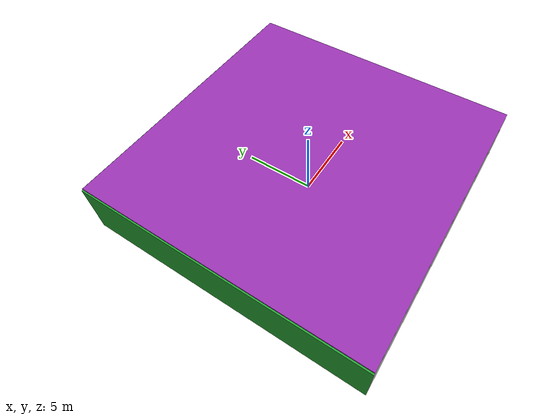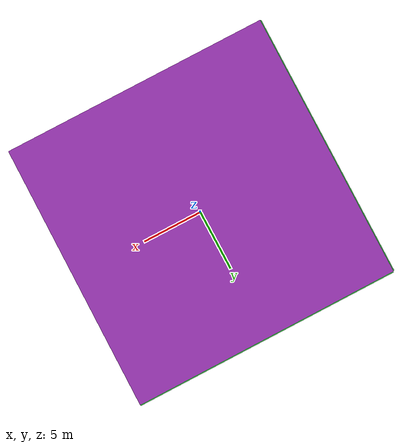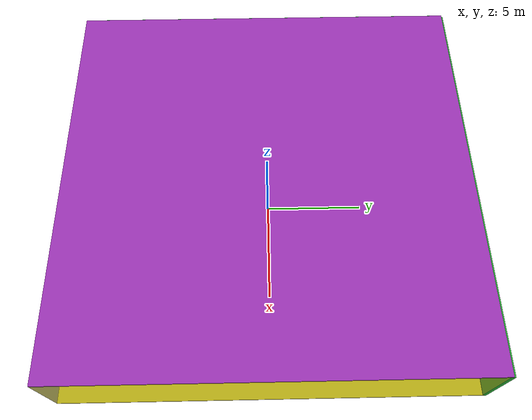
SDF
<sdf version="1.4">
 <world name="default">
  <physics type="ode">
   <max_step_size>0.001</max_step_size>
   <real_time_factor>1</real_time_factor>
   <real_time_update_rate>1000</real_time_update_rate>
   <gravity>0 0 -9.8</gravity>
  </physics>
  <scene><ambient>0.4 0.4 0.4 1</ambient><background>0.7 0.7 0.7 1</background><shadows>1</shadows></scene>
  <model name="Surrounding">
   <static>1</static>
   <link name="Ceiling">
    <collision name="Ceiling_Collision"><geometry><box><size>20 20 0.1</size></box></geometry></collision>
    <visual name="Ceiling_Visual">
     <geometry><box><size>20 20 0.1</size></box></geometry>
     <material>
      <script><uri>file://media/materials/scripts/gazebo.material</uri><name>Gazebo/Purple</name></script>
     </material>
    </visual>
    <pose>0 0 4.05 0 0 0</pose>
   </link>
   <link name="Wall_South">
    <collision name="Wall_South_Collision">
     <geometry><box><size>20 0 4</size></box></geometry>
     <pose>0 0 2 0 -0 0</pose>
    </collision>
    <visual name="Wall_South_Visual">
     <pose>0 0 2 0 -0 0</pose>
     <geometry><box><size>20 0 4</size></box></geometry>
     <material>
      <script><uri>file://media/materials/scripts/gazebo.material</uri><name>Gazebo/PioneerBody</name></script>
     </material>
    </visual>
    <velocity_decay><linear>0</linear><angular>0</angular></velocity_decay>
    <pose>0 -10 0 0 -0 0</pose>
   </link>
   <link name="Wall_East">
    <collision name="Wall_21_Collision">
     <geometry><box><size>20 0 4</size></box></geometry>
     <pose>0 0 2 0 -0 0</pose>
    </collision>
    <visual name="Wall_21_Visual">
     <pose>0 0 2 0 -0 0</pose>
     <geometry><box><size>20 0 4</size></box></geometry>
     <material>
      <script>
       <uri>file://media/materials/scripts/gazebo.material</uri>
       <name>Gazebo/YellowTransparent</name>
      </script>
     </material>
    </visual>
    <velocity_decay><linear>0</linear><angular>0</angular></velocity_decay>
    <pose>10 0 0 0 -0 1.5708</pose>
   </link>
   <link name="Wall_North">
    <collision name="Wall_22_Collision">
     <geometry><box><size>20 0.2 4</size></box></geometry>
     <pose>0 0 2 0 -0 0</pose>
    </collision>
    <visual name="Wall_22_Visual">
     <pose>0 0 2 0 -0 0</pose>
     <geometry><box><size>20 0.2 4</size></box></geometry>
     <material>
      <script><uri>file://media/materials/scripts/gazebo.material</uri><name>Gazebo/GreenGlow</name></script>
     </material>
    </visual>
    <velocity_decay><linear>0</linear><angular>0</angular></velocity_decay>
    <pose>0 10 0 0 -0 0</pose>
   </link>
   <link name="Wall_West">
    <collision name="Wall_23_Collision">
     <geometry><box><size>20 0.2 4</size></box></geometry>
     <pose>0 0 2 0 -0 0</pose>
    </collision>
    <visual name="Wall_23_Visual">
     <pose>0 0 2 0 -0 0</pose>
     <geometry><box><size>20 0.2 4</size></box></geometry>
     <material>
      <script><uri>file://media/materials/scripts/gazebo.material</uri><name>Gazebo/GreenGlow</name></script>
     </material>
    </visual>
    <velocity_decay><linear>0</linear><angular>0</angular></velocity_decay>
    <pose>-10 0 0 0 0 -1.5708</pose>
   </link>
   <link name="Ground_link">
    <collision name="collision">
     <pose>0 0 .05 0 -0 0</pose>
     <geometry><box><size>20 20 0.1</size></box></geometry>
    </collision>
    <visual name="visual">
     <pose>0 0 .05 0 -0 0</pose>
     <geometry><box><size>20 20 0.1</size></box></geometry>
     <material>
      <script><uri>file://media/materials/scripts/gazebo.material</uri><name>Gazebo/YellowGlow</name></script>
     </material>
    </visual>
   </link>
   <static>1</static>
  </model>
  <spherical_coordinates>
   <surface_model>EARTH_WGS84</surface_model>
   <latitude_deg>0</latitude_deg>
   <longitude_deg>0</longitude_deg>
   <elevation>0</elevation>
   <heading_deg>0</heading_deg>
  </spherical_coordinates>
  <light name="lightball_0" type="diffuse">
   <diffuse>0.8 0.8 0.8 1</diffuse>
   <specular>0.2 0.2 0.2 1</specular>
   <attenuation>
    <range>100</range>
    <constant>0.7</constant>
    <linear>0.01</linear>
    <quadratic>0.001</quadratic>
   </attenuation>
   <direction>-0.5 0.1 -0.9</direction>
   <pose>-5.32796043175 2.5362830218 2.34459994843 0 0 0</pose>
  </light>
  <light name="lightball_1" type="diffuse">
   <diffuse>0.8 0.8 0.8 1</diffuse>
   <specular>0.2 0.2 0.2 1</specular>
   <attenuation>
    <range>100</range>
    <constant>0.7</constant>
    <linear>0.01</linear>
    <quadratic>0.001</quadratic>
   </attenuation>
   <direction>-0.5 0.1 -0.9</direction>
   <pose>-2.3555212944 -4.68102700929 1.65312612162 0 0 0</pose>
  </light>
  <light name="lightball_2" type="diffuse">
   <diffuse>0.8 0.8 0.8 1</diffuse>
   <specular>0.2 0.2 0.2 1</specular>
   <attenuation>
    <range>100</range>
    <constant>0.7</constant>
    <linear>0.01</linear>
    <quadratic>0.001</quadratic>
   </attenuation>
   <direction>-0.5 0.1 -0.9</direction>
   <pose>-6.3775818437 9.35083830955 0.590196004014 0 0 0</pose>
  </light>
  <light name="lightball_3" type="diffuse">
   <diffuse>0.8 0.8 0.8 1</diffuse>
   <specular>0.2 0.2 0.2 1</specular>
   <attenuation>
    <range>100</range>
    <constant>0.7</constant>
    <linear>0.01</linear>
    <quadratic>0.001</quadratic>
   </attenuation>
   <direction>-0.5 0.1 -0.9</direction>
   <pose>-5.38469893974 5.80793471716 2.62626736144 0 0 0</pose>
  </light>
  <light name="lightball_4" type="diffuse">
   <diffuse>0.8 0.8 0.8 1</diffuse>
   <specular>0.2 0.2 0.2 1</specular>
   <attenuation>
    <range>100</range>
    <constant>0.7</constant>
    <linear>0.01</linear>
    <quadratic>0.001</quadratic>
   </attenuation>
   <direction>-0.5 0.1 -0.9</direction>
   <pose>-1.00282968355 -9.91401682183 3.71423259858 0 0 0</pose>
  </light>
  <light name="lightball_5" type="diffuse">
   <diffuse>0.8 0.8 0.8 1</diffuse>
   <specular>0.2 0.2 0.2 1</specular>
   <attenuation>
    <range>100</range>
    <constant>0.7</constant>
    <linear>0.01</linear>
    <quadratic>0.001</quadratic>
   </attenuation>
   <direction>-0.5 0.1 -0.9</direction>
   <pose>3.34194876034 -3.13169380437 0.702542054039 0 0 0</pose>
  </light>
  <include>
   <uri>model://textured_shapes</uri>
   <pose>-4.87302134379 1.84493549261 0 0 0 2.20581537701</pose>
  </include>
  <include>
   <uri>model://textured_shapes</uri>
   <pose>-1.8539258714 4.79562368388 0 0 0 3.13126146165</pose>
  </include>
 </world>
</sdf>

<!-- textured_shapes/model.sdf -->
<sdf version="1.6">
  <model name="textured_shapes">
    <pose>0 0 0.5 0 0 0</pose>
    <link name="box">
      <pose>0 -1.5 0 0 0 0</pose>
      <collision name="collision">
        <geometry>
          <box>
            <size>1 1 1</size>
          </box>
        </geometry>
      </collision>
      <visual name="visual">
        <geometry>
          <box>
            <size>1 1 1</size>
          </box>
        </geometry>
        <material>
          <script>
            <uri>model://../model_source/models/textured_shapes/materials/scripts</uri>
            <uri>model://../model_source/models/textured_shapes/materials/textures</uri>
            <name>TexturedShape/Squares</name>
          </script>
        </material>
      </visual>
    </link>
    <link name="sphere">
      <collision name="collision">
        <geometry>
          <sphere>
            <radius>0.5</radius>
          </sphere>
        </geometry>
      </collision>
      <visual name="visual">
        <geometry>
          <sphere>
            <radius>0.5</radius>
          </sphere>
        </geometry>
        <material>
          <script>
            <uri>model://../model_source/models/textured_shapes/materials/scripts</uri>
            <uri>model://../model_source/models/textured_shapes/materials/textures</uri>
            <name>TexturedShape/Squares</name>
          </script>
        </material>
      </visual>
    </link>
    <link name="cylinder">
      <pose>0 1.5 0 0 0 0</pose>
      <collision name="collision">
        <geometry>
          <cylinder>
            <radius>0.5</radius>
            <length>1</length>
          </cylinder>
        </geometry>
      </collision>
      <visual name="visual">
        <geometry>
          <cylinder>
            <radius>0.5</radius>
            <length>1</length>
          </cylinder>
        </geometry>
        <material>
          <script>
            <uri>model://../model_source/models/textured_shapes/materials/scripts</uri>
            <uri>model://../model_source/models/textured_shapes/materials/textures</uri>
            <name>TexturedShape/Squares</name>
          </script>
        </material>
      </visual>
    </link>
  </model>
</sdf>
